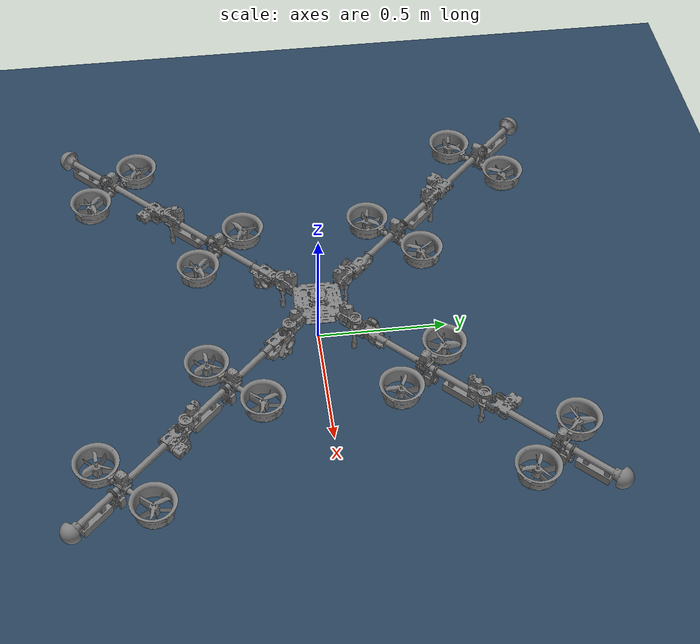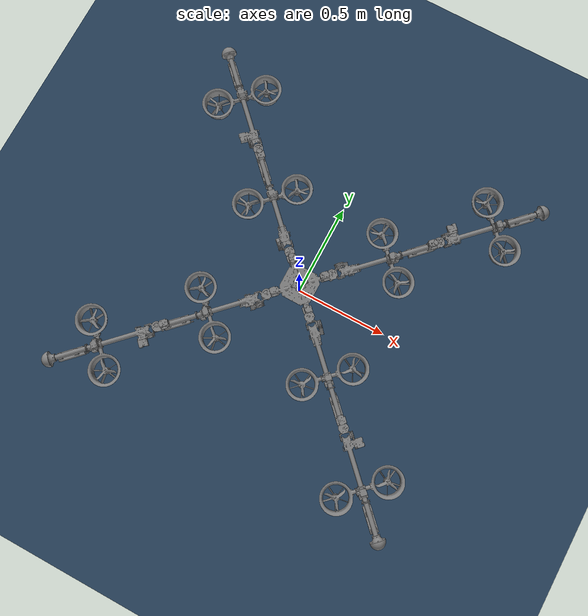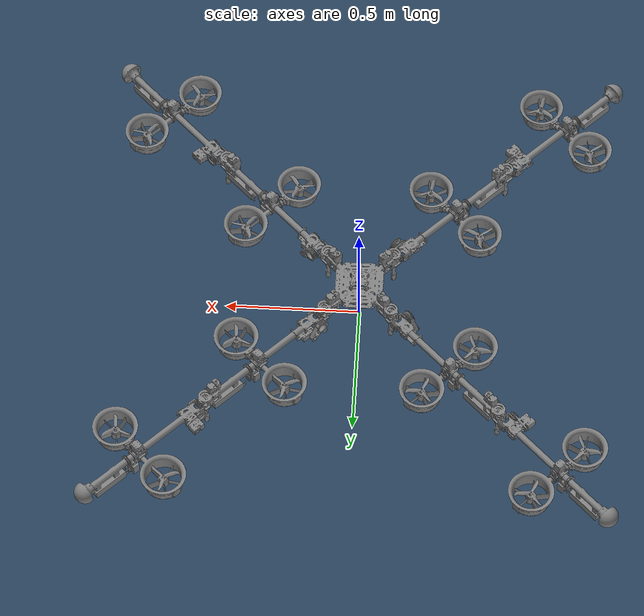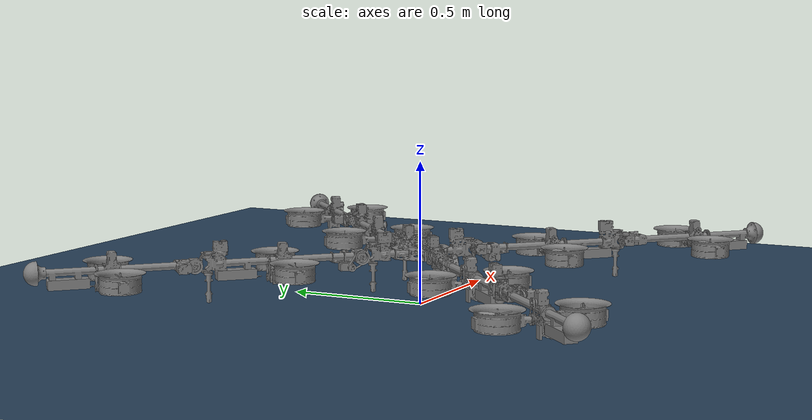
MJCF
<?xml version="1.0" ?>
<mujoco model="spidar">
  <compiler angle="radian" autolimits="true" balanceinertia="true"/>

  <option cone="elliptic" impratio="100"/>

  <statistic meansize="0.187046" extent="2.09508" center="0 0 -0.0166684"/>

  <default>
    <default class="spidar">
      <joint frictionloss="0.1"/>

      <default class="foot">
        <geom pos="0.5115 0 0" type="mesh" mesh="leg_cap" contype="1" conaffinity="0"
              solimp="0.6 1 0.05" condim="6" friction="1.0 0.02 0.01"/>
      </default>

    </default>
  </default>

  <asset>
    <mesh name="center_link" file="center_link.stl"/>
    <mesh name="joint_junction_link_large_pitch_pulley" file="joint_junction_link_large_pitch_pulley.stl"/>
    <mesh name="long_leg" file="long_leg.stl"/>
    <mesh name="general_link" file="general_link.stl"/>
    <mesh name="roll_link" file="roll_link.stl"/>
    <mesh name="pitch_link" file="pitch_link.stl"/>
    <mesh name="joint_junction_link" file="joint_junction_link.stl"/>
    <mesh name="ZIPPY-3000-25C-6S" file="ZIPPY-3000-25C-6S.stl"/>
    <mesh name="end_link" file="end_link.stl"/>
    <mesh name="spinal" file="spinal.stl"/>
    <mesh name="leg_cap" file="leg_cap.stl"/>
  </asset>
  <worldbody>
    <body name="center_link" pos="0 0 0.2" childclass="spidar" >
      <inertial pos="0.0 0.0 0.027" mass="1.1780349" fullinertia="0.009512 0.009512 0.017150 0.000000 0.000000 0.000000"/>
      <freejoint/>
      <geom name="center_link" type="mesh" mesh="center_link" contype="1" conaffinity="0"/>
      <geom name="fc" pos="-0.0129 -0.0044 0.0398284" type="mesh" mesh="spinal" contype="1" conaffinity="0"/>
      <body name="joint_junction_link1" pos="0.12233 0.12233 -0.0155" quat="0.92388 0 0 0.382683">
        <inertial pos="0.0221846 0.00554615 -0.0130546" quat="0.921455 0.0370403 0.173926 0.345397" mass="0.13" diaginertia="0.000279505 0.000247519 9.42653e-05"/>
        <joint name="joint1_yaw" pos="0 0 0" axis="0 0 1" range="-1.9108 1.9108" damping="10"/>
        <geom name="joint_junction_link1" type="mesh" mesh="joint_junction_link_large_pitch_pulley" contype="1" conaffinity="0"/>
        <geom name="joint_junction_leg1" pos="0 0 -0.0283" quat="0.707107 0 0 0.707107" type="mesh" mesh="long_leg" contype="1" conaffinity="0"/>
        <body name="link1" pos="0.0515 0 0">
          <inertial pos="0.333302 -0.00111277 -0.0150755" quat="0.510216 0.470096 0.585749 0.419031" mass="0.94" diaginertia="0.0292733 0.0289485 0.000577734"/>
          <joint name="joint1_pitch" pos="0 0 0" axis="0 1 0" range="-1.9108 1.9108" damping="10"/>
          <geom name="link1" type="mesh" mesh="general_link" contype="1" conaffinity="0"/>
          <geom name="bat1" pos="0.43 0 -0.039" quat="0.707107 -0.707107 0 0" type="mesh" mesh="ZIPPY-3000-25C-6S" contype="1" conaffinity="0"/>
          <body name="joint_junction_link2" pos="0.523 0 0">
            <inertial pos="0.0202459 0.00311475 -0.0133287" quat="0.902062 0.0517089 0.152803 0.400327" mass="0.122" diaginertia="0.000259361 0.000241546 7.79896e-05"/>
            <joint name="joint2_yaw" pos="0 0 0" axis="0 0 1" range="-1.9108 1.9108" damping="10"/>
            <geom name="joint_junction_link2" type="mesh" mesh="joint_junction_link" contype="1" conaffinity="0"/>
            <geom name="joint_junction_leg2" pos="0 0 -0.0283" quat="0.707107 0 0 0.707107" type="mesh" mesh="long_leg" contype="1" conaffinity="0"/>
            <body name="link2" pos="0.0515 0 0">
              <inertial pos="0.318146 0.00609485 -0.0190433" quat="-0.204813 0.692075 -0.223649 0.65503" mass="0.854" diaginertia="0.0257829 0.0256037 0.000714694"/>
              <joint name="joint2_pitch" pos="0 0 0" axis="0 1 0" range="-1.9108 1.9108" damping="10"/>
              <geom name="link2" type="mesh" mesh="end_link" contype="1" conaffinity="0"/>
              <geom name="bat2" pos="0.41 0 -0.039" quat="0.707107 -0.707107 0 0" type="mesh" mesh="ZIPPY-3000-25C-6S" contype="1" conaffinity="0"/>
              <geom name="link2_foot" class="foot"/>
              <body name="gimbal2_roll_module" pos="0.268 0 0">
                <inertial pos="0.0145839 -0.0007152 -0.0219046" quat="0.885928 0.0669428 0.15987 0.430223" mass="0.275" diaginertia="0.000508807 0.000496706 0.000111487"/>
                <joint name="gimbal2_roll" pos="0 0 0" axis="1 0 0" range="-18.8496 18.8496" damping="2"/>
                <geom name="gimbal2_roll_module" type="mesh" mesh="roll_link" contype="1" conaffinity="0"/>
                <body name="gimbal2_pitch_module" pos="-0.0065 0 -0.027">
                  <inertial pos="1.10995e-05 -0.00150863 -0.00109005" quat="0.500339 0.499661 -0.499661 0.500339" mass="0.43402" diaginertia="0.00778537 0.00759736 0.000402986"/>
                  <joint name="gimbal2_pitch" pos="0 0 0" axis="0 1 0" range="-18.8496 18.8496" damping="2"/>
                  <geom name="gimbal2_pitch_module" type="mesh" mesh="pitch_link" contype="1" conaffinity="0"/>
                  <body name="thrust2">
                    <inertial pos="0 0 0" mass="1e-05" diaginertia="1e-06 1e-06 1e-06"/>
                    <site name="rotor2" pos="0 0 0"/>
                  </body>
                </body>
              </body>
            </body>
          </body>
          <body name="gimbal1_roll_module" pos="0.268 0 0">
            <inertial pos="0.0145839 -0.0007152 -0.0219046" quat="0.885928 0.0669428 0.15987 0.430223" mass="0.275" diaginertia="0.000508807 0.000496706 0.000111487"/>
            <joint name="gimbal1_roll" pos="0 0 0" axis="1 0 0" range="-18.8496 18.8496" damping="2"/>
            <geom name="gimbal1_roll_module" type="mesh" mesh="roll_link" contype="1" conaffinity="0"/>
            <body name="gimbal1_pitch_module" pos="-0.0065 0 -0.027">
              <inertial pos="1.10995e-05 -0.00150863 -0.00109005" quat="0.500339 0.499661 -0.499661 0.500339" mass="0.43402" diaginertia="0.00778537 0.00759736 0.000402986"/>
              <joint name="gimbal1_pitch" pos="0 0 0" axis="0 1 0" range="-18.8496 18.8496" damping="2"/>
              <geom name="gimbal1_pitch_module" type="mesh" mesh="pitch_link" contype="1" conaffinity="0"/>
              <body name="thrust1">
                <inertial pos="0 0 0" mass="1e-05" diaginertia="1e-06 1e-06 1e-06"/>
                <site name="rotor1" pos="0 0 0"/>
              </body>
            </body>
          </body>
        </body>
      </body>
      <body name="joint_junction_link3" pos="-0.12233 0.12233 -0.0155" quat="0.382683 0 0 0.92388">
        <inertial pos="0.0221846 0.00554615 -0.0130546" quat="0.921455 0.0370403 0.173926 0.345397" mass="0.13" diaginertia="0.000279505 0.000247519 9.42653e-05"/>
        <joint name="joint3_yaw" pos="0 0 0" axis="0 0 1" range="-1.9108 1.9108" damping="10"/>
        <geom name="joint_junction_link3" type="mesh" mesh="joint_junction_link_large_pitch_pulley" contype="1" conaffinity="0"/>
        <geom name="joint_junction_leg3" pos="0 0 -0.0283" quat="0.707107 0 0 0.707107" type="mesh" mesh="long_leg" contype="1" conaffinity="0"/>
        <body name="link3" pos="0.0515 0 0">
          <inertial pos="0.333302 -0.00111277 -0.0150755" quat="0.510216 0.470096 0.585749 0.419031" mass="0.94" diaginertia="0.0292733 0.0289485 0.000577734"/>
          <joint name="joint3_pitch" pos="0 0 0" axis="0 1 0" range="-1.9108 1.9108" damping="10"/>
          <geom name="link3" type="mesh" mesh="general_link" contype="1" conaffinity="0"/>
          <geom name="bat3" pos="0.43 0 -0.039" quat="0.707107 -0.707107 0 0" type="mesh" mesh="ZIPPY-3000-25C-6S" contype="1" conaffinity="0"/>
          <body name="joint_junction_link4" pos="0.523 0 0">
            <inertial pos="0.0202459 0.00311475 -0.0133287" quat="0.902062 0.0517089 0.152803 0.400327" mass="0.122" diaginertia="0.000259361 0.000241546 7.79896e-05"/>
            <joint name="joint4_yaw" pos="0 0 0" axis="0 0 1" range="-1.9108 1.9108" damping="10"/>
            <geom name="joint_junction_link4" type="mesh" mesh="joint_junction_link" contype="1" conaffinity="0"/>
            <geom name="joint_junction_leg4" pos="0 0 -0.0283" quat="0.707107 0 0 0.707107" type="mesh" mesh="long_leg" contype="1" conaffinity="0"/>
            <body name="link4" pos="0.0515 0 0">
              <inertial pos="0.318146 0.00609485 -0.0190433" quat="-0.204813 0.692075 -0.223649 0.65503" mass="0.854" diaginertia="0.0257829 0.0256037 0.000714694"/>
              <joint name="joint4_pitch" pos="0 0 0" axis="0 1 0" range="-1.9108 1.9108" damping="10"/>
              <geom name="link4" type="mesh" mesh="end_link" contype="1" conaffinity="0"/>
              <geom name="bat4" pos="0.41 0 -0.039" quat="0.707107 -0.707107 0 0" type="mesh" mesh="ZIPPY-3000-25C-6S" contype="1" conaffinity="0"/>
              <geom name="link4_foot" class="foot"/>
              <body name="gimbal4_roll_module" pos="0.268 0 0">
                <inertial pos="0.0145839 -0.0007152 -0.0219046" quat="0.885928 0.0669428 0.15987 0.430223" mass="0.275" diaginertia="0.000508807 0.000496706 0.000111487"/>
                <joint name="gimbal4_roll" pos="0 0 0" axis="1 0 0" range="-18.8496 18.8496" damping="2"/>
                <geom name="gimbal4_roll_module" type="mesh" mesh="roll_link" contype="1" conaffinity="0"/>
                <body name="gimbal4_pitch_module" pos="-0.0065 0 -0.027">
                  <inertial pos="1.10995e-05 -0.00150863 -0.00109005" quat="0.500339 0.499661 -0.499661 0.500339" mass="0.43402" diaginertia="0.00778537 0.00759736 0.000402986"/>
                  <joint name="gimbal4_pitch" pos="0 0 0" axis="0 1 0" range="-18.8496 18.8496" damping="2"/>
                  <geom name="gimbal4_pitch_module" type="mesh" mesh="pitch_link" contype="1" conaffinity="0"/>
                  <body name="thrust4">
                    <inertial pos="0 0 0" mass="1e-05" diaginertia="1e-06 1e-06 1e-06"/>
                    <site name="rotor4" pos="0 0 0"/>
                  </body>
                </body>
              </body>
            </body>
          </body>
          <body name="gimbal3_roll_module" pos="0.268 0 0">
            <inertial pos="0.0145839 -0.0007152 -0.0219046" quat="0.885928 0.0669428 0.15987 0.430223" mass="0.275" diaginertia="0.000508807 0.000496706 0.000111487"/>
            <joint name="gimbal3_roll" pos="0 0 0" axis="1 0 0" range="-18.8496 18.8496" damping="2"/>
            <geom name="gimbal3_roll_module" type="mesh" mesh="roll_link" contype="1" conaffinity="0"/>
            <body name="gimbal3_pitch_module" pos="-0.0065 0 -0.027">
              <inertial pos="1.10995e-05 -0.00150863 -0.00109005" quat="0.500339 0.499661 -0.499661 0.500339" mass="0.43402" diaginertia="0.00778537 0.00759736 0.000402986"/>
              <joint name="gimbal3_pitch" pos="0 0 0" axis="0 1 0" range="-18.8496 18.8496" damping="2"/>
              <geom name="gimbal3_pitch_module" type="mesh" mesh="pitch_link" contype="1" conaffinity="0"/>
              <body name="thrust3">
                <inertial pos="0 0 0" mass="1e-05" diaginertia="1e-06 1e-06 1e-06"/>
                <site name="rotor3" pos="0 0 0"/>
              </body>
            </body>
          </body>
        </body>
      </body>
      <body name="joint_junction_link5" pos="-0.12233 -0.12233 -0.0155" quat="-0.382683 0 0 0.92388">
        <inertial pos="0.0221846 0.00554615 -0.0130546" quat="0.921455 0.0370403 0.173926 0.345397" mass="0.13" diaginertia="0.000279505 0.000247519 9.42653e-05"/>
        <joint name="joint5_yaw" pos="0 0 0" axis="0 0 1" range="-1.9108 1.9108" damping="10"/>
        <geom name="joint_junction_link5" type="mesh" mesh="joint_junction_link_large_pitch_pulley" contype="1" conaffinity="0"/>
        <geom name="joint_junction_leg5" pos="0 0 -0.0283" quat="0.707107 0 0 0.707107" type="mesh" mesh="long_leg" contype="1" conaffinity="0"/>
        <body name="link5" pos="0.0515 0 0">
          <inertial pos="0.333302 -0.00111277 -0.0150755" quat="0.510216 0.470096 0.585749 0.419031" mass="0.94" diaginertia="0.0292733 0.0289485 0.000577734"/>
          <joint name="joint5_pitch" pos="0 0 0" axis="0 1 0" range="-1.9108 1.9108" damping="10"/>
          <geom name="link5" type="mesh" mesh="general_link" contype="1" conaffinity="0"/>
          <geom name="bat5" pos="0.43 0 -0.039" quat="0.707107 -0.707107 0 0" type="mesh" mesh="ZIPPY-3000-25C-6S" contype="1" conaffinity="0"/>
          <body name="joint_junction_link6" pos="0.523 0 0">
            <inertial pos="0.0202459 0.00311475 -0.0133287" quat="0.902062 0.0517089 0.152803 0.400327" mass="0.122" diaginertia="0.000259361 0.000241546 7.79896e-05"/>
            <joint name="joint6_yaw" pos="0 0 0" axis="0 0 1" range="-1.9108 1.9108" damping="10"/>
            <geom name="joint_junction_link6" type="mesh" mesh="joint_junction_link" contype="1" conaffinity="0"/>
            <geom name="joint_junction_leg6" pos="0 0 -0.0283" quat="0.707107 0 0 0.707107" type="mesh" mesh="long_leg" contype="1" conaffinity="0"/>
            <body name="link6" pos="0.0515 0 0">
              <inertial pos="0.318146 0.00609485 -0.0190433" quat="-0.204813 0.692075 -0.223649 0.65503" mass="0.854" diaginertia="0.0257829 0.0256037 0.000714694"/>
              <joint name="joint6_pitch" pos="0 0 0" axis="0 1 0" range="-1.9108 1.9108" damping="10"/>
              <geom name="link6" type="mesh" mesh="end_link" contype="1" conaffinity="0"/>
              <geom name="bat6" pos="0.41 0 -0.039" quat="0.707107 -0.707107 0 0" type="mesh" mesh="ZIPPY-3000-25C-6S" contype="1" conaffinity="0"/>
              <geom name="link6_foot" class="foot"/>
              <body name="gimbal6_roll_module" pos="0.268 0 0">
                <inertial pos="0.0145839 -0.0007152 -0.0219046" quat="0.885928 0.0669428 0.15987 0.430223" mass="0.275" diaginertia="0.000508807 0.000496706 0.000111487"/>
                <joint name="gimbal6_roll" pos="0 0 0" axis="1 0 0" range="-18.8496 18.8496" damping="2"/>
                <geom name="gimbal6_roll_module" type="mesh" mesh="roll_link" contype="1" conaffinity="0"/>
                <body name="gimbal6_pitch_module" pos="-0.0065 0 -0.027">
                  <inertial pos="1.10995e-05 -0.00150863 -0.00109005" quat="0.500339 0.499661 -0.499661 0.500339" mass="0.43402" diaginertia="0.00778537 0.00759736 0.000402986"/>
                  <joint name="gimbal6_pitch" pos="0 0 0" axis="0 1 0" range="-18.8496 18.8496" damping="2"/>
                  <geom name="gimbal6_pitch_module" type="mesh" mesh="pitch_link" contype="1" conaffinity="0"/>
                  <body name="thrust6">
                    <inertial pos="0 0 0" mass="1e-05" diaginertia="1e-06 1e-06 1e-06"/>
                    <site name="rotor6" pos="0 0 0"/>
                  </body>
                </body>
              </body>
            </body>
          </body>
          <body name="gimbal5_roll_module" pos="0.268 0 0">
            <inertial pos="0.0145839 -0.0007152 -0.0219046" quat="0.885928 0.0669428 0.15987 0.430223" mass="0.275" diaginertia="0.000508807 0.000496706 0.000111487"/>
            <joint name="gimbal5_roll" pos="0 0 0" axis="1 0 0" range="-18.8496 18.8496" damping="2"/>
            <geom name="gimbal5_roll_module" type="mesh" mesh="roll_link" contype="1" conaffinity="0"/>
            <body name="gimbal5_pitch_module" pos="-0.0065 0 -0.027">
              <inertial pos="1.10995e-05 -0.00150863 -0.00109005" quat="0.500339 0.499661 -0.499661 0.500339" mass="0.43402" diaginertia="0.00778537 0.00759736 0.000402986"/>
              <joint name="gimbal5_pitch" pos="0 0 0" axis="0 1 0" range="-18.8496 18.8496" damping="2"/>
              <geom name="gimbal5_pitch_module" type="mesh" mesh="pitch_link" contype="1" conaffinity="0"/>
              <body name="thrust5">
                <inertial pos="0 0 0" mass="1e-05" diaginertia="1e-06 1e-06 1e-06"/>
                <site name="rotor5" pos="0 0 0"/>
              </body>
            </body>
          </body>
        </body>
      </body>
      <body name="joint_junction_link7" pos="0.12233 -0.12233 -0.0155" quat="-0.92388 0 0 0.382683">
        <inertial pos="0.0221846 0.00554615 -0.0130546" quat="0.921455 0.0370403 0.173926 0.345397" mass="0.13" diaginertia="0.000279505 0.000247519 9.42653e-05"/>
        <joint name="joint7_yaw" pos="0 0 0" axis="0 0 1" range="-1.9108 1.9108" damping="10"/>
        <geom name="joint_junction_link7" type="mesh" mesh="joint_junction_link_large_pitch_pulley" contype="1" conaffinity="0"/>
        <geom name="joint_junction_leg7" pos="0 0 -0.0283" quat="0.707107 0 0 0.707107" type="mesh" mesh="long_leg" contype="1" conaffinity="0"/>
        <body name="link7" pos="0.0515 0 0">
          <inertial pos="0.333302 -0.00111277 -0.0150755" quat="0.510216 0.470096 0.585749 0.419031" mass="0.94" diaginertia="0.0292733 0.0289485 0.000577734"/>
          <joint name="joint7_pitch" pos="0 0 0" axis="0 1 0" range="-1.9108 1.9108" damping="10" />
          <geom name="link7" type="mesh" mesh="general_link" contype="1" conaffinity="0"/>
          <geom name="bat7" pos="0.43 0 -0.039" quat="0.707107 -0.707107 0 0" type="mesh" mesh="ZIPPY-3000-25C-6S" contype="1" conaffinity="0"/>
          <body name="joint_junction_link8" pos="0.523 0 0">
            <inertial pos="0.0202459 0.00311475 -0.0133287" quat="0.902062 0.0517089 0.152803 0.400327" mass="0.122" diaginertia="0.000259361 0.000241546 7.79896e-05"/>
            <joint name="joint8_yaw" pos="0 0 0" axis="0 0 1" range="-1.9108 1.9108" damping="10"/>
            <geom name="joint_junction_link8" type="mesh" mesh="joint_junction_link" contype="1" conaffinity="0"/>
            <geom name="joint_junction_leg8" pos="0 0 -0.0283" quat="0.707107 0 0 0.707107" type="mesh" mesh="long_leg" contype="1" conaffinity="0"/>
            <body name="link8" pos="0.0515 0 0">
              <inertial pos="0.318146 0.00609485 -0.0190433" quat="-0.204813 0.692075 -0.223649 0.65503" mass="0.854" diaginertia="0.0257829 0.0256037 0.000714694"/>
              <joint name="joint8_pitch" pos="0 0 0" axis="0 1 0" range="-1.9108 1.9108" damping="10"/>
              <geom name="link8" type="mesh" mesh="end_link" contype="1" conaffinity="0"/>
              <geom name="bat8" pos="0.41 0 -0.039" quat="0.707107 -0.707107 0 0" type="mesh" mesh="ZIPPY-3000-25C-6S" contype="1" conaffinity="0"/>
              <geom name="link8_foot" class="foot"/>
              <body name="gimbal8_roll_module" pos="0.268 0 0">
                <inertial pos="0.0145839 -0.0007152 -0.0219046" quat="0.885928 0.0669428 0.15987 0.430223" mass="0.275" diaginertia="0.000508807 0.000496706 0.000111487"/>
                <joint name="gimbal8_roll" pos="0 0 0" axis="1 0 0" range="-18.8496 18.8496" damping="2"/>
                <geom name="gimbal8_roll_module" type="mesh" mesh="roll_link" contype="1" conaffinity="0"/>
                <body name="gimbal8_pitch_module" pos="-0.0065 0 -0.027">
                  <inertial pos="1.10995e-05 -0.00150863 -0.00109005" quat="0.500339 0.499661 -0.499661 0.500339" mass="0.43402" diaginertia="0.00778537 0.00759736 0.000402986"/>
                  <joint name="gimbal8_pitch" pos="0 0 0" axis="0 1 0" range="-18.8496 18.8496" damping="2"/>
                  <geom name="gimbal8_pitch_module" type="mesh" mesh="pitch_link" contype="1" conaffinity="0"/>
                  <body name="thrust8">
                    <inertial pos="0 0 0" mass="1e-05" diaginertia="1e-06 1e-06 1e-06"/>
                    <site name="rotor8" pos="0 0 0"/>
                  </body>
                </body>
              </body>
            </body>
          </body>
          <body name="gimbal7_roll_module" pos="0.268 0 0">
            <inertial pos="0.0145839 -0.0007152 -0.0219046" quat="0.885928 0.0669428 0.15987 0.430223" mass="0.275" diaginertia="0.000508807 0.000496706 0.000111487"/>
            <joint name="gimbal7_roll" pos="0 0 0" axis="1 0 0" range="-18.8496 18.8496" damping="2"/>
            <geom name="gimbal7_roll_module" type="mesh" mesh="roll_link" contype="1" conaffinity="0"/>
            <body name="gimbal7_pitch_module" pos="-0.0065 0 -0.027">
              <inertial pos="1.10995e-05 -0.00150863 -0.00109005" quat="0.500339 0.499661 -0.499661 0.500339" mass="0.43402" diaginertia="0.00778537 0.00759736 0.000402986"/>
              <joint name="gimbal7_pitch" pos="0 0 0" axis="0 1 0" range="-18.8496 18.8496" damping="2"/>
              <geom name="gimbal7_pitch_module" type="mesh" mesh="pitch_link" contype="1" conaffinity="0"/>
              <body name="thrust7">
                <inertial pos="0 0 0" mass="1e-05" diaginertia="1e-06 1e-06 1e-06"/>
                <site name="rotor7" pos="0 0 0"/>
              </body>
            </body>
          </body>
        </body>
      </body>
      <site name="fc" pos="-0.0129 -0.0044 0.0398284"/>
      <body name="fc" pos="-0.0129 -0.0044 0.0398284" quat="1 0 0 0">
        <inertial pos="0.0128576 0.0044678 -0.0226530" mass="0.0354160" fullinertia="0.0000225 0.0000225 0.0000346 -0.0000001 0.0000000 0.0000000"/>
      </body>
    </body>
  </worldbody>
  <actuator>
    <motor name="rotor1" ctrllimited="true" ctrlrange="0 36" gear="0 0 1 0 0 0.0" site="rotor1"/>
    <motor name="rotor2" ctrllimited="true" ctrlrange="0 36" gear="0 0 1 0 0 0.0" site="rotor2"/>
    <motor name="rotor3" ctrllimited="true" ctrlrange="0 36" gear="0 0 1 0 0 0.0" site="rotor3"/>
    <motor name="rotor4" ctrllimited="true" ctrlrange="0 36" gear="0 0 1 0 0 0.0" site="rotor4"/>
    <motor name="rotor5" ctrllimited="true" ctrlrange="0 36" gear="0 0 1 0 0 0.0" site="rotor5"/>
    <motor name="rotor6" ctrllimited="true" ctrlrange="0 36" gear="0 0 1 0 0 0.0" site="rotor6"/>
    <motor name="rotor7" ctrllimited="true" ctrlrange="0 36" gear="0 0 1 0 0 0.0" site="rotor7"/>
    <motor name="rotor8" ctrllimited="true" ctrlrange="0 36" gear="0 0 1 0 0 0.0" site="rotor8"/>
    <position name="joint1_pitch" kp="40" joint="joint1_pitch" forcerange="-8 8" />
    <position name="joint3_pitch" kp="40" joint="joint3_pitch" forcerange="-8 8" />
    <position name="joint5_pitch" kp="40" joint="joint5_pitch" forcerange="-8 8" />
    <position name="joint7_pitch" kp="40" joint="joint7_pitch" forcerange="-8 8"  />
    <position name="joint1_yaw" kp="40" joint="joint1_yaw" forcerange="-8 8" />
    <position name="joint3_yaw" kp="40" joint="joint3_yaw" forcerange="-8 8" />
    <position name="joint5_yaw" kp="40" joint="joint5_yaw" forcerange="-8 8" />
    <position name="joint7_yaw" kp="40" joint="joint7_yaw" forcerange="-8 8" />
    <position name="joint2_pitch" kp="40" joint="joint2_pitch" forcerange="-8 8" />
    <position name="joint2_yaw" kp="40" joint="joint2_yaw" forcerange="-8 8" />
    <position name="gimbal1_roll" kp="40" joint="gimbal1_roll"/>
    <position name="gimbal1_pitch" kp="40" joint="gimbal1_pitch"/>
    <position name="gimbal2_roll" kp="40" joint="gimbal2_roll"/>
    <position name="gimbal2_pitch" kp="40" joint="gimbal2_pitch"/>
    <position name="joint4_pitch" kp="40" joint="joint4_pitch" forcerange="-8 8" />
    <position name="joint4_yaw" kp="40" joint="joint4_yaw" forcerange="-8 8" />
    <position name="gimbal3_roll" kp="40" joint="gimbal3_roll"/>
    <position name="gimbal3_pitch" kp="40" joint="gimbal3_pitch"/>
    <position name="gimbal4_roll" kp="40" joint="gimbal4_roll"/>
    <position name="gimbal4_pitch" kp="40" joint="gimbal4_pitch"/>
    <position name="joint6_pitch" kp="40" joint="joint6_pitch" forcerange="-8 8" />
    <position name="joint6_yaw" kp="40" joint="joint6_yaw" forcerange="-8 8" />
    <position name="gimbal5_roll" kp="40" joint="gimbal5_roll"/>
    <position name="gimbal5_pitch" kp="40" joint="gimbal5_pitch"/>
    <position name="gimbal6_roll" kp="40" joint="gimbal6_roll"/>
    <position name="gimbal6_pitch" kp="40" joint="gimbal6_pitch"/>
    <position name="joint8_pitch" kp="40" joint="joint8_pitch" forcerange="-8 8" />
    <position name="joint8_yaw" kp="40" joint="joint8_yaw" forcerange="-8 8" />
    <position name="gimbal7_roll" kp="40" joint="gimbal7_roll"/>
    <position name="gimbal7_pitch" kp="40" joint="gimbal7_pitch"/>
    <position name="gimbal8_roll" kp="40" joint="gimbal8_roll"/>
    <position name="gimbal8_pitch" kp="40" joint="gimbal8_pitch"/>
  </actuator>
  <sensor>
    <accelerometer name="acc" site="fc"/>
    <gyro name="gyro" site="fc"/>
    <magnetometer name="mag" site="fc"/>
  </sensor>
  <include file="../../../../../../aerial_robot_3rdparty/mujoco_ros_control/config/world.xml"/>
</mujoco>

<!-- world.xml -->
<mujoco model="world">
  <compiler coordinate="local" convexhull="false" angle="radian"/>
  <option timestep="0.001" gravity="0 0 -9.81" collision="all"/>
  <option integrator="implicit" />

  <asset>
    <texture type="skybox" builtin="gradient" rgb1=".3 .5 .7" rgb2="0 0 0" width="32" height="512"/>
    <texture name="body" type="cube" builtin="flat" mark="cross" width="128" height="128" rgb1="0.8 0.6 0.4" rgb2="0.8 0.6 0.4" markrgb="1 1 1" random="0.01"/>
    <material name="body" texture="body" texuniform="true" rgba="0.8 0.6 .4 1"/>
    <texture name="grid" type="2d" builtin="checker" width="512" height="512" rgb1=".1 .2 .3" rgb2=".2 .3 .4"/>
    <material name="grid" texture="grid" texrepeat="1 1" texuniform="true" reflectance=".2"/>
  </asset>

  <worldbody>
    <light directional="true" diffuse=".8 .8 .8" pos="0 0 10" dir="0 0 -10"/>
    <geom name="floor" size="0 0 .05" type="plane" material="grid" condim="3"/>
  </worldbody>

</mujoco>
